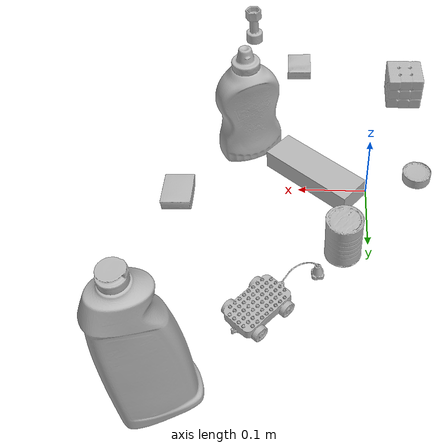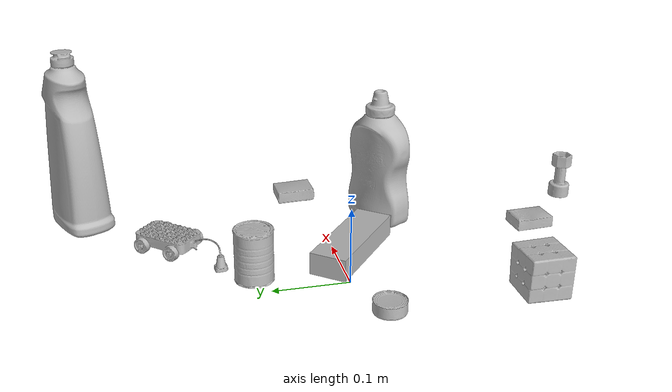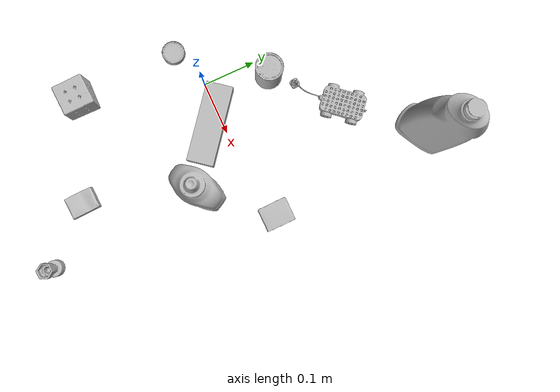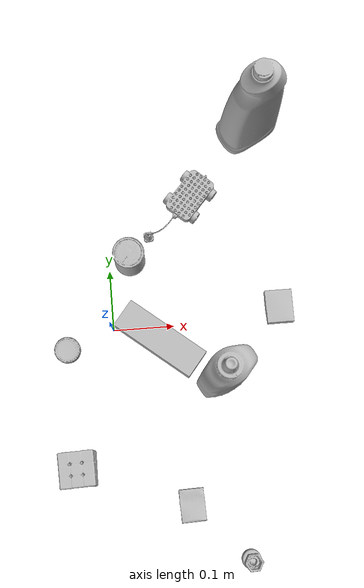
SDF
<sdf version="1.4">
  <world name="default">
    <light name="light1" type="point">
      <pose>0 0 1 0 0 0</pose>
      <diffuse>3 3 3 1</diffuse>
      <specular>3 3 3 1</specular>
    </light>
    <light name="light2" type="point">
      <pose>0 0.5 2 0 0 0</pose>
      <diffuse>1 1 1 1</diffuse>
      <specular>1 1 1 1</specular>
    </light>
    <light name="light3" type="point">
      <pose>0 0.5 2 0 0 0</pose>
      <diffuse>3 3 3 1</diffuse>
      <specular>3 3 3 1</specular>
    </light>
    <scene>
      <ambient>0.7 0.7 0.7</ambient>
    </scene>
    <model name="bottle1">
      <link name="link_bottle1">
        <collision name="default">
          <geometry>
            <mesh>
              <uri>model://mustard_bottle/collision_meshes/collision.obj</uri>
              <scale>1.0 1.0 1.0</scale>
            </mesh>
          </geometry>
          <surface>
            <friction>
              <ode>
                <mu>0.5</mu>
                <mu2>0.5</mu2>
              </ode>
            </friction>
          <contact>
        <ode>
            <max_vel>0</max_vel>
            <min_depth>0.0001</min_depth>
            <kp>1e8</kp>
        </ode>
    </contact></surface>
        </collision>
        <visual name="default">
          <geometry>
            <mesh>
              <uri>model://mustard_bottle/visual_meshes/visual.dae</uri>
              <scale>1.0 1.0 1.0</scale>
            </mesh>
          </geometry>
        </visual>
        <inertial>
          <mass>0.7866348028182983</mass>
          <pose>0.0005032454500906169 -0.00015647400869056582 -0.0174757931381464 0.00041823249995057767 0.0009465787698991903 0.02485370186883952</pose>
          <inertia>
            <ixx>0.0021843775</ixx>
            <iyy>0.0019166061</iyy>
            <izz>0.0005756938</izz>
            <ixy>0</ixy>
            <ixz>0</ixz>
            <iyz>0</iyz>
          </inertia>
        </inertial>
      </link>
      <pose>0.17771679162979126 -0.08778832107782364 0.09615197777748108 1.4359227598762891e-05 1.6246959634842097e-05 2.0670855798952026</pose>
    </model>
    <model name="bottle2">
      <link name="link_bottle2">
        <collision name="default">
          <geometry>
            <mesh>
              <uri>model://bleach_cleanser/collision_meshes/collision.obj</uri>
              <scale>1.0 1.0 1.0</scale>
            </mesh>
          </geometry>
          <surface>
            <friction>
              <ode>
                <mu>0.5</mu>
                <mu2>0.5</mu2>
              </ode>
            </friction>
          <contact>
        <ode>
            <max_vel>0</max_vel>
            <min_depth>0.0001</min_depth>
            <kp>1e8</kp>
        </ode>
    </contact></surface>
        </collision>
        <visual name="default">
          <geometry>
            <mesh>
              <uri>model://bleach_cleanser/visual_meshes/visual.dae</uri>
              <scale>1.0 1.0 1.0</scale>
            </mesh>
          </geometry>
        </visual>
        <inertial>
          <mass>1.5776710510253906</mass>
          <pose>0.00012193183647468686 0.003783883061259985 -0.02442161552608013 -0.07381671362264838 0.0004201168949340897 -0.006875045535038288</pose>
          <inertia>
            <ixx>0.007678755</ixx>
            <iyy>0.0071554743</iyy>
            <izz>0.0013128674</izz>
            <ixy>0</ixy>
            <ixz>0</ixz>
            <iyz>0</iyz>
          </inertia>
        </inertial>
      </link>
      <pose>0.24970370531082153 0.33200499415397644 0.12578412890434265 -0.00020077725423675968 1.5534565862890894e-05 -1.094562094673855</pose>
    </model>
    <model name="toy1">
      <link name="link_toy1">
        <collision name="default">
          <geometry>
            <mesh>
              <uri>model://g_lego_duplo/collision_meshes/collision.obj</uri>
              <scale>0.5 0.5 0.5</scale>
            </mesh>
          </geometry>
          <surface>
            <friction>
              <ode>
                <mu>0.5</mu>
                <mu2>0.5</mu2>
              </ode>
            </friction>
          <contact>
        <ode>
            <max_vel>0</max_vel>
            <min_depth>0.0001</min_depth>
            <kp>1e8</kp>
        </ode>
    </contact></surface>
        </collision>
        <visual name="default">
          <geometry>
            <mesh>
              <uri>model://g_lego_duplo/visual_meshes/visual.dae</uri>
              <scale>0.5 0.5 0.5</scale>
            </mesh>
          </geometry>
        </visual>
        <inertial>
          <mass>0.06580430269241333</mass>
          <pose>-0.025023844093084335 0.0008777321199886501 0.0019403373589739203 0.010962977320182745 0.038108249742412996 -0.09653031078073558</pose>
          <inertia>
            <ixx>2.3837789e-05</ixx>
            <iyy>7.206929e-05</iyy>
            <izz>9.016138e-05</izz>
            <ixy>0</ixy>
            <ixz>0</ixz>
            <iyz>0</iyz>
          </inertia>
        </inertial>
      </link>
      <pose>0.12253820896148682 0.19469444453716278 0.014908993616700172 0.00042193228280855736 -0.0023177571798497403 -2.2920756967978537</pose>
    </model>
    <model name="toy2">
      <link name="link_toy2">
        <collision name="default">
          <geometry>
            <mesh>
              <uri>model://c_toy_airplane/collision_meshes/collision.obj</uri>
              <scale>1.0 1.0 1.0</scale>
            </mesh>
          </geometry>
          <surface>
            <friction>
              <ode>
                <mu>0.5</mu>
                <mu2>0.5</mu2>
              </ode>
            </friction>
          <contact>
        <ode>
            <max_vel>0</max_vel>
            <min_depth>0.0001</min_depth>
            <kp>1e8</kp>
        </ode>
    </contact></surface>
        </collision>
        <visual name="default">
          <geometry>
            <mesh>
              <uri>model://c_toy_airplane/visual_meshes/visual.dae</uri>
              <scale>1.0 1.0 1.0</scale>
            </mesh>
          </geometry>
        </visual>
        <inertial>
          <mass>0.012545601464807987</mass>
          <pose>-0.00023024262918625027 -4.4310368707556336e-07 -0.0060805282555520535 -0.006192226732466636 -0.01679790977646328 0.7654621556572541</pose>
          <inertia>
            <ixx>5.760684e-06</ixx>
            <iyy>5.744425e-06</iyy>
            <izz>1.3524945e-06</izz>
            <ixy>0</ixy>
            <ixz>0</ixz>
            <iyz>0</iyz>
          </inertia>
        </inertial>
      </link>
      <pose>0.19530683755874634 -0.3841341733932495 0.03351237624883652 -6.529303399915348e-05 2.6632420095084065e-06 1.3727537777491365</pose>
    </model>
    <model name="can1">
      <link name="link_can1">
        <collision name="default">
          <geometry>
            <mesh>
              <uri>model://tuna_fish_can/collision_meshes/collision.obj</uri>
              <scale>0.5 0.5 0.5</scale>
            </mesh>
          </geometry>
          <surface>
            <friction>
              <ode>
                <mu>0.5</mu>
                <mu2>0.5</mu2>
              </ode>
            </friction>
          <contact>
        <ode>
            <max_vel>0</max_vel>
            <min_depth>0.0001</min_depth>
            <kp>1e8</kp>
        </ode>
    </contact></surface>
        </collision>
        <visual name="default">
          <geometry>
            <mesh>
              <uri>model://tuna_fish_can/visual_meshes/visual.dae</uri>
              <scale>0.5 0.5 0.5</scale>
            </mesh>
          </geometry>
        </visual>
        <inertial>
          <mass>0.0216250978410244</mass>
          <pose>-2.036200021393597e-05 -7.256498065544292e-06 -0.0005269024986773729 -0.0017944779234091367 0.00017161663308651613 0.24053681665098822</pose>
          <inertia>
            <ixx>2.923745e-06</ixx>
            <iyy>2.9115588e-06</iyy>
            <izz>5.002946e-06</izz>
            <ixy>0</ixy>
            <ixz>0</ixz>
            <iyz>0</iyz>
          </inertia>
        </inertial>
      </link>
      <pose>-0.07722824066877365 -0.027712596580386162 0.008519995957612991 1.5502579168297228e-10 -2.182893811827997e-08 0.6707234110243775</pose>
    </model>
    <model name="can2">
      <link name="link_can2">
        <collision name="default">
          <geometry>
            <mesh>
              <uri>model://master_chef_can/collision_meshes/collision.obj</uri>
              <scale>0.5 0.5 0.5</scale>
            </mesh>
          </geometry>
          <surface>
            <friction>
              <ode>
                <mu>0.5</mu>
                <mu2>0.5</mu2>
              </ode>
            </friction>
          <contact>
        <ode>
            <max_vel>0</max_vel>
            <min_depth>0.0001</min_depth>
            <kp>1e8</kp>
        </ode>
    </contact></surface>
        </collision>
        <visual name="default">
          <geometry>
            <mesh>
              <uri>model://master_chef_can/visual_meshes/visual.dae</uri>
              <scale>0.5 0.5 0.5</scale>
            </mesh>
          </geometry>
        </visual>
        <inertial>
          <mass>0.16779577732086182</mass>
          <pose>-4.661964703700505e-05 1.3926845099376806e-07 -5.080012488178909e-05 -0.001799515621871614 0.0006479176547847844 -0.610266079213139</pose>
          <inertia>
            <ixx>9.848473e-05</ixx>
            <iyy>9.77599e-05</iyy>
            <izz>5.442035e-05</izz>
            <ixy>0</ixy>
            <ixz>0</ixz>
            <iyz>0</iyz>
          </inertia>
        </inertial>
      </link>
      <pose>0.035374756902456284 0.11580319702625275 0.03530199080705643 -1.2421615712320525e-06 -1.0535628723480663e-06 -1.6861607975622228</pose>
    </model>
    <model name="box1">
      <link name="link_box1">
        <collision name="default">
          <geometry>
            <mesh>
              <uri>model://rubiks_cube/collision_meshes/collision.obj</uri>
              <scale>1.0 1.0 1.0</scale>
            </mesh>
          </geometry>
          <surface>
            <friction>
              <ode>
                <mu>0.5</mu>
                <mu2>0.5</mu2>
              </ode>
            </friction>
          <contact>
        <ode>
            <max_vel>0</max_vel>
            <min_depth>0.0001</min_depth>
            <kp>1e8</kp>
        </ode>
    </contact></surface>
        </collision>
        <visual name="default">
          <geometry>
            <mesh>
              <uri>model://rubiks_cube/visual_meshes/visual.dae</uri>
              <scale>1.0 1.0 1.0</scale>
            </mesh>
          </geometry>
        </visual>
        <inertial>
          <mass>0.232398122549057</mass>
          <pose>2.6721041649580002e-05 5.256967051536776e-05 -7.264316082000732e-06 -0.05467303663832053 -0.0981402329670775 -0.034454960240128486</pose>
          <inertia>
            <ixx>0.00012841556</ixx>
            <iyy>0.00012781669</iyy>
            <izz>0.00012947968</izz>
            <ixy>0</ixy>
            <ixz>0</ixz>
            <iyz>0</iyz>
          </inertia>
        </inertial>
      </link>
      <pose>-0.07030393183231354 -0.22213274240493774 0.028678972274065018 -2.6402092590674746e-06 -8.356678845724791e-07 -3.1198904226152293</pose>
    </model>
    <model name="box2">
      <link name="link_box2">
        <collision name="default">
          <geometry>
            <mesh>
              <uri>model://jenga/collision_meshes/collision.obj</uri>
              <scale>1.0 1.0 1.0</scale>
            </mesh>
          </geometry>
          <surface>
            <friction>
              <ode>
                <mu>0.5</mu>
                <mu2>0.5</mu2>
              </ode>
            </friction>
          <contact>
        <ode>
            <max_vel>0</max_vel>
            <min_depth>0.0001</min_depth>
            <kp>1e8</kp>
        </ode>
    </contact></surface>
        </collision>
        <visual name="default">
          <geometry>
            <mesh>
              <uri>model://jenga/visual_meshes/visual.dae</uri>
              <scale>1.0 1.0 1.0</scale>
            </mesh>
          </geometry>
        </visual>
        <inertial>
          <mass>0.2088489830493927</mass>
          <pose>-2.502855807051674e-07 -0.0001025000965455547 -4.092339804628864e-05 0.0 -7.342154049184251e-07 0.0</pose>
          <inertia>
            <ixx>5.7793575e-05</ixx>
            <iyy>0.00039160773</iyy>
            <izz>0.00041807455</izz>
            <ixy>0</ixy>
            <ixz>0</ixz>
            <iyz>0</iyz>
          </inertia>
        </inertial>
      </link>
      <pose>0.07569380849599838 -0.021461794152855873 0.014999997802078724 1.1876250151157132e-09 -2.3111322082753617e-09 2.4625409657339663</pose>
    </model>
    <model name="box3">
      <link name="link_box3">
        <collision name="default">
          <geometry>
            <mesh>
              <uri>model://cracker_box/collision_meshes/collision.obj</uri>
              <scale>0.25 0.25 0.25</scale>
            </mesh>
          </geometry>
          <surface>
            <friction>
              <ode>
                <mu>0.5</mu>
                <mu2>0.5</mu2>
              </ode>
            </friction>
          <contact>
        <ode>
            <max_vel>0</max_vel>
            <min_depth>0.0001</min_depth>
            <kp>1e8</kp>
        </ode>
    </contact></surface>
        </collision>
        <visual name="default">
          <geometry>
            <mesh>
              <uri>model://cracker_box/visual_meshes/visual.dae</uri>
              <scale>0.25 0.25 0.25</scale>
            </mesh>
          </geometry>
        </visual>
        <inertial>
          <mass>0.039105094969272614</mass>
          <pose>0.00023660340229980648 6.358561222441494e-05 -0.00042573834070935845 -0.0003162078884583708 -0.011106488668689832 0.0025467950032832675</pose>
          <inertia>
            <ixx>6.216619e-06</ixx>
            <iyy>1.0264859e-05</iyy>
            <izz>1.4648894e-05</izz>
            <ixy>0</ixy>
            <ixz>0</ixz>
            <iyz>0</iyz>
          </inertia>
        </inertial>
      </link>
      <pose>0.10814274847507477 -0.2932050824165344 0.009096026420593262 -0.014050546039924158 -0.0050165781956114566 -1.5366186879575532</pose>
    </model>
    <model name="box4">
      <link name="link_box4">
        <collision name="default">
          <geometry>
            <mesh>
              <uri>model://pudding_box/collision_meshes/collision.obj</uri>
              <scale>0.5 0.5 0.5</scale>
            </mesh>
          </geometry>
          <surface>
            <friction>
              <ode>
                <mu>0.5</mu>
                <mu2>0.5</mu2>
              </ode>
            </friction>
          <contact>
        <ode>
            <max_vel>0</max_vel>
            <min_depth>0.0001</min_depth>
            <kp>1e8</kp>
        </ode>
    </contact></surface>
        </collision>
        <visual name="default">
          <geometry>
            <mesh>
              <uri>model://pudding_box/visual_meshes/visual.dae</uri>
              <scale>0.5 0.5 0.5</scale>
            </mesh>
          </geometry>
        </visual>
        <inertial>
          <mass>0.03813362866640091</mass>
          <pose>0.00024474109522998333 0.00040339428232982755 -0.0002594413817860186 0.005213101815861678 -0.006603796390356506 0.020079825165494957</pose>
          <inertia>
            <ixx>1.0777026e-05</ixx>
            <iyy>7.25086e-06</iyy>
            <izz>1.5915095e-05</izz>
            <ixy>0</ixy>
            <ixz>0</ixz>
            <iyz>0</iyz>
          </inertia>
        </inertial>
      </link>
      <pose>0.2762414216995239 0.018616212531924248 0.00986290443688631 0.022348458931416466 -0.011391794934026686 -3.1385529672975303</pose>
    </model>
  <physics type="ode">
      <max_contacts>50</max_contacts>
      <ode>
        <solver>
          <type>quick</type>
          <iters>75</iters>
        </solver>
        <constraints>
          <contact_max_correcting_vel>0</contact_max_correcting_vel>
          <contact_surface_layer>0</contact_surface_layer>
        </constraints>
      </ode>
    </physics></world>
</sdf>
